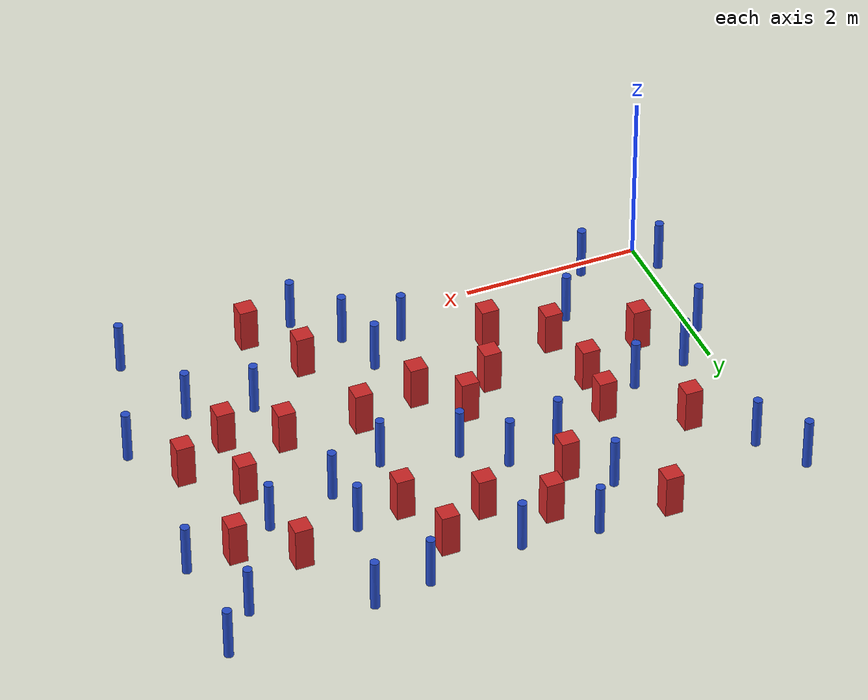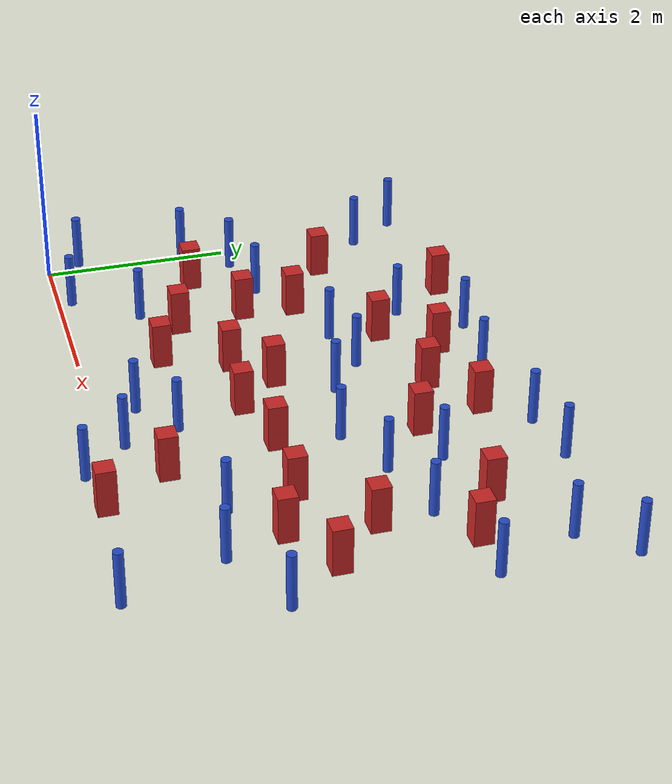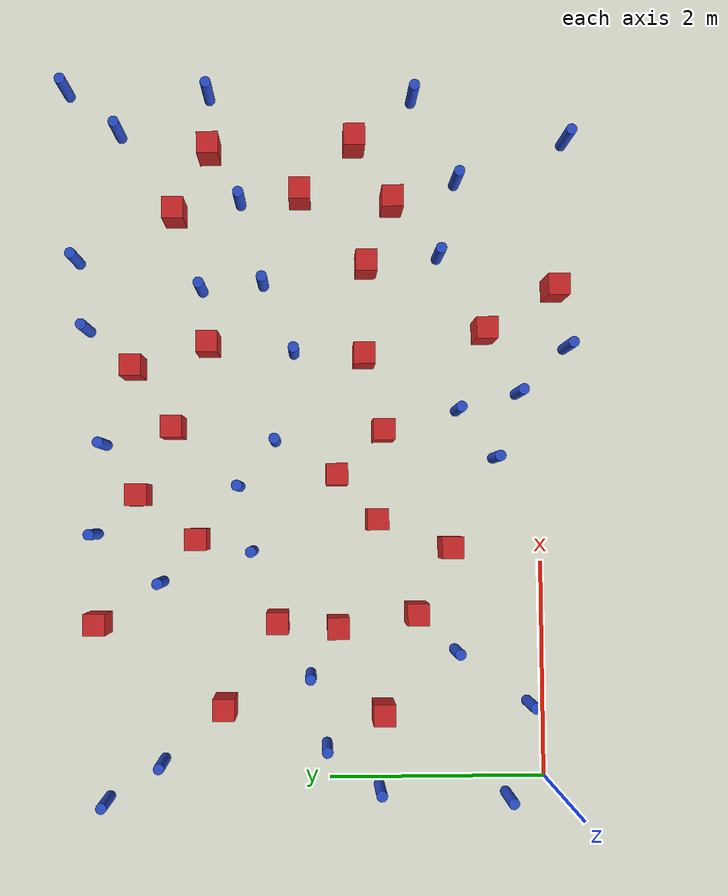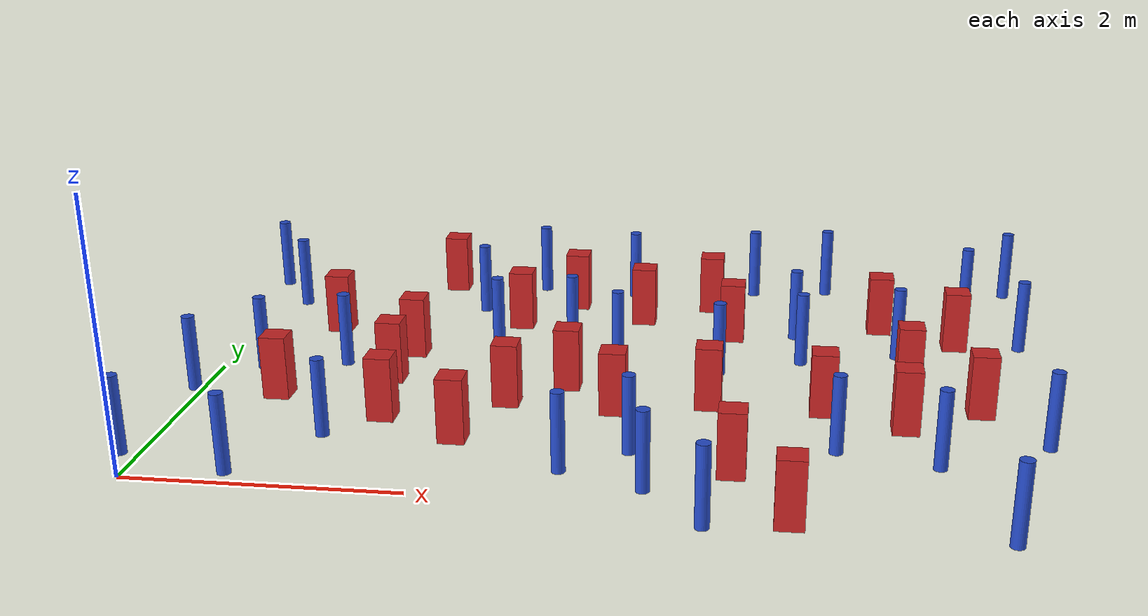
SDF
<sdf version="1.6">
 <model name="dense_55">
  <model name="pole_obstacle1">
   <static>true</static>
   <pose>5.58992759345 0.771042951277 -3.09024884793e-07 -7.19054271912e-07 -2.11315075134e-07 -1.93935509265e-07</pose>
   <link name="link">
    <pose>0 0 0.3 0 -0 0</pose>
    <inertial>
     <mass>1</mass>
     <inertia><ixx>0.145833</ixx><ixy>0</ixy><ixz>0</ixz><iyy>0.145833</iyy><iyz>0</iyz><izz>0.125</izz></inertia>
    </inertial>
    <collision name="collision">
     <geometry><cylinder><radius>0.05</radius><length>.6</length></cylinder></geometry>
    </collision>
    <visual name="visual">
     <geometry><cylinder><radius>0.05</radius><length>.6</length></cylinder></geometry>
     <material>
      <script><name>Gazebo/Blue</name><uri>file://media/materials/scripts/gazebo.material</uri></script>
     </material>
    </visual>
   </link>
  </model>
  <model name="pole_obstacle3">
   <static>true</static>
   <pose>3.14973722396 2.48802405268 -3.09024884793e-07 -7.19054271912e-07 -2.11315075144e-07 -1.93935509271e-07</pose>
   <link name="link">
    <pose>0 0 0.3 0 -0 0</pose>
    <inertial>
     <mass>1</mass>
     <inertia><ixx>0.145833</ixx><ixy>0</ixy><ixz>0</ixz><iyy>0.145833</iyy><iyz>0</iyz><izz>0.125</izz></inertia>
    </inertial>
    <collision name="collision">
     <geometry><cylinder><radius>0.05</radius><length>.6</length></cylinder></geometry>
    </collision>
    <visual name="visual">
     <geometry><cylinder><radius>0.05</radius><length>.6</length></cylinder></geometry>
     <material>
      <script><name>Gazebo/Blue</name><uri>file://media/materials/scripts/gazebo.material</uri></script>
     </material>
    </visual>
   </link>
  </model>
  <model name="square_post_obstacle13">
   <static>true</static>
   <pose>3.27607757877 3.43404862615 -4.36207812815e-07 3.75137919937e-06 9.77721102514e-07 2.47381364184e-05</pose>
   <link name="link">
    <pose>0 0 0.25 0 -0 0</pose>
    <inertial>
     <mass>100</mass>
     <inertia>
      <ixx>0.166667</ixx>
      <ixy>0</ixy>
      <ixz>0</ixz>
      <iyy>0.166667</iyy>
      <iyz>0</iyz>
      <izz>0.166667</izz>
     </inertia>
    </inertial>
    <collision name="collision"><geometry><box><size>.2 .2 .5</size></box></geometry></collision>
    <visual name="visual">
     <geometry><box><size>.2 .2 .5</size></box></geometry>
     <material>
      <script><name>Gazebo/Red</name><uri>file://media/materials/scripts/gazebo.material</uri></script>
     </material>
    </visual>
   </link>
  </model>
  <model name="pole_obstacle15">
   <static>true</static>
   <pose>6.39323773252 1.17414004297 -3.09024884793e-07 -7.19054271912e-07 -2.11315075124e-07 -1.93935509261e-07</pose>
   <link name="link">
    <pose>0 0 0.3 0 -0 0</pose>
    <inertial>
     <mass>1</mass>
     <inertia><ixx>0.145833</ixx><ixy>0</ixy><ixz>0</ixz><iyy>0.145833</iyy><iyz>0</iyz><izz>0.125</izz></inertia>
    </inertial>
    <collision name="collision">
     <geometry><cylinder><radius>0.05</radius><length>.6</length></cylinder></geometry>
    </collision>
    <visual name="visual">
     <geometry><cylinder><radius>0.05</radius><length>.6</length></cylinder></geometry>
     <material>
      <script><name>Gazebo/Blue</name><uri>file://media/materials/scripts/gazebo.material</uri></script>
     </material>
    </visual>
   </link>
  </model>
  <model name="square_post_obstacle24">
   <static>true</static>
   <pose>2.82406468082 1.91857976176 -4.36207812815e-07 3.75137919937e-06 9.77721102514e-07 2.47381364184e-05</pose>
   <link name="link">
    <pose>0 0 0.25 0 -0 0</pose>
    <inertial>
     <mass>100</mass>
     <inertia>
      <ixx>0.166667</ixx>
      <ixy>0</ixy>
      <ixz>0</ixz>
      <iyy>0.166667</iyy>
      <iyz>0</iyz>
      <izz>0.166667</izz>
     </inertia>
    </inertial>
    <collision name="collision"><geometry><box><size>.2 .2 .5</size></box></geometry></collision>
    <visual name="visual">
     <geometry><box><size>.2 .2 .5</size></box></geometry>
     <material>
      <script><name>Gazebo/Red</name><uri>file://media/materials/scripts/gazebo.material</uri></script>
     </material>
    </visual>
   </link>
  </model>
  <model name="pole_obstacle18">
   <static>true</static>
   <pose>2.12176368627 2.70748521758 -3.09024884793e-07 -7.19054271912e-07 -2.11315075144e-07 -1.93935509271e-07</pose>
   <link name="link">
    <pose>0 0 0.3 0 -0 0</pose>
    <inertial>
     <mass>1</mass>
     <inertia><ixx>0.145833</ixx><ixy>0</ixy><ixz>0</ixz><iyy>0.145833</iyy><iyz>0</iyz><izz>0.125</izz></inertia>
    </inertial>
    <collision name="collision">
     <geometry><cylinder><radius>0.05</radius><length>.6</length></cylinder></geometry>
    </collision>
    <visual name="visual">
     <geometry><cylinder><radius>0.05</radius><length>.6</length></cylinder></geometry>
     <material>
      <script><name>Gazebo/Blue</name><uri>file://media/materials/scripts/gazebo.material</uri></script>
     </material>
    </visual>
   </link>
  </model>
  <model name="square_post_obstacle31">
   <static>true</static>
   <pose>4.79556955324 1.62854520627 -4.36207812815e-07 3.75137919937e-06 9.77721102514e-07 2.47381364184e-05</pose>
   <link name="link">
    <pose>0 0 0.25 0 -0 0</pose>
    <inertial>
     <mass>100</mass>
     <inertia>
      <ixx>0.166667</ixx>
      <ixy>0</ixy>
      <ixz>0</ixz>
      <iyy>0.166667</iyy>
      <iyz>0</iyz>
      <izz>0.166667</izz>
     </inertia>
    </inertial>
    <collision name="collision"><geometry><box><size>.2 .2 .5</size></box></geometry></collision>
    <visual name="visual">
     <geometry><box><size>.2 .2 .5</size></box></geometry>
     <material>
      <script><name>Gazebo/Red</name><uri>file://media/materials/scripts/gazebo.material</uri></script>
     </material>
    </visual>
   </link>
  </model>
  <model name="pole_obstacle36">
   <static>true</static>
   <pose>4.86189972478 4.3403535434 -3.09024884793e-07 -7.19054271911e-07 -2.1131507516e-07 -1.93935509277e-07</pose>
   <link name="link">
    <pose>0 0 0.3 0 -0 0</pose>
    <inertial>
     <mass>1</mass>
     <inertia><ixx>0.145833</ixx><ixy>0</ixy><ixz>0</ixz><iyy>0.145833</iyy><iyz>0</iyz><izz>0.125</izz></inertia>
    </inertial>
    <collision name="collision">
     <geometry><cylinder><radius>0.05</radius><length>.6</length></cylinder></geometry>
    </collision>
    <visual name="visual">
     <geometry><cylinder><radius>0.05</radius><length>.6</length></cylinder></geometry>
     <material>
      <script><name>Gazebo/Blue</name><uri>file://media/materials/scripts/gazebo.material</uri></script>
     </material>
    </visual>
   </link>
  </model>
  <model name="square_post_obstacle36">
   <static>true</static>
   <pose>4.15909963592 0.525989410992 -4.36207812815e-07 3.75137919937e-06 9.77721102514e-07 2.47381364184e-05</pose>
   <link name="link">
    <pose>0 0 0.25 0 -0 0</pose>
    <inertial>
     <mass>100</mass>
     <inertia>
      <ixx>0.166667</ixx>
      <ixy>0</ixy>
      <ixz>0</ixz>
      <iyy>0.166667</iyy>
      <iyz>0</iyz>
      <izz>0.166667</izz>
     </inertia>
    </inertial>
    <collision name="collision"><geometry><box><size>.2 .2 .5</size></box></geometry></collision>
    <visual name="visual">
     <geometry><box><size>.2 .2 .5</size></box></geometry>
     <material>
      <script><name>Gazebo/Red</name><uri>file://media/materials/scripts/gazebo.material</uri></script>
     </material>
    </visual>
   </link>
  </model>
  <model name="pole_obstacle38">
   <static>true</static>
   <pose>4.20906245238 4.24223437994 -3.09024884793e-07 -7.19054271911e-07 -2.1131507516e-07 -1.93935509277e-07</pose>
   <link name="link">
    <pose>0 0 0.3 0 -0 0</pose>
    <inertial>
     <mass>1</mass>
     <inertia><ixx>0.145833</ixx><ixy>0</ixy><ixz>0</ixz><iyy>0.145833</iyy><iyz>0</iyz><izz>0.125</izz></inertia>
    </inertial>
    <collision name="collision">
     <geometry><cylinder><radius>0.05</radius><length>.6</length></cylinder></geometry>
    </collision>
    <visual name="visual">
     <geometry><cylinder><radius>0.05</radius><length>.6</length></cylinder></geometry>
     <material>
      <script><name>Gazebo/Blue</name><uri>file://media/materials/scripts/gazebo.material</uri></script>
     </material>
    </visual>
   </link>
  </model>
  <model name="square_post_obstacle41">
   <static>true</static>
   <pose>3.23152151646 1.48305024463 -4.36207812815e-07 3.75137919937e-06 9.77721102514e-07 2.47381364184e-05</pose>
   <link name="link">
    <pose>0 0 0.25 0 -0 0</pose>
    <inertial>
     <mass>100</mass>
     <inertia>
      <ixx>0.166667</ixx>
      <ixy>0</ixy>
      <ixz>0</ixz>
      <iyy>0.166667</iyy>
      <iyz>0</iyz>
      <izz>0.166667</izz>
     </inertia>
    </inertial>
    <collision name="collision"><geometry><box><size>.2 .2 .5</size></box></geometry></collision>
    <visual name="visual">
     <geometry><box><size>.2 .2 .5</size></box></geometry>
     <material>
      <script><name>Gazebo/Red</name><uri>file://media/materials/scripts/gazebo.material</uri></script>
     </material>
    </visual>
   </link>
  </model>
  <model name="square_post_obstacle44">
   <static>true</static>
   <pose>4.556816064 -0.141495539214 -4.36207812815e-07 3.75137919937e-06 9.77721102514e-07 2.47381364184e-05</pose>
   <link name="link">
    <pose>0 0 0.25 0 -0 0</pose>
    <inertial>
     <mass>100</mass>
     <inertia>
      <ixx>0.166667</ixx>
      <ixy>0</ixy>
      <ixz>0</ixz>
      <iyy>0.166667</iyy>
      <iyz>0</iyz>
      <izz>0.166667</izz>
     </inertia>
    </inertial>
    <collision name="collision"><geometry><box><size>.2 .2 .5</size></box></geometry></collision>
    <visual name="visual">
     <geometry><box><size>.2 .2 .5</size></box></geometry>
     <material>
      <script><name>Gazebo/Red</name><uri>file://media/materials/scripts/gazebo.material</uri></script>
     </material>
    </visual>
   </link>
  </model>
  <model name="pole_obstacle48">
   <static>true</static>
   <pose>2.72687363572 2.83181015 -3.09024884793e-07 -7.19054271912e-07 -2.11315075144e-07 -1.93935509271e-07</pose>
   <link name="link">
    <pose>0 0 0.3 0 -0 0</pose>
    <inertial>
     <mass>1</mass>
     <inertia><ixx>0.145833</ixx><ixy>0</ixy><ixz>0</ixz><iyy>0.145833</iyy><iyz>0</iyz><izz>0.125</izz></inertia>
    </inertial>
    <collision name="collision">
     <geometry><cylinder><radius>0.05</radius><length>.6</length></cylinder></geometry>
    </collision>
    <visual name="visual">
     <geometry><cylinder><radius>0.05</radius><length>.6</length></cylinder></geometry>
     <material>
      <script><name>Gazebo/Blue</name><uri>file://media/materials/scripts/gazebo.material</uri></script>
     </material>
    </visual>
   </link>
  </model>
  <model name="pole_obstacle53">
   <static>true</static>
   <pose>3.98057424473 2.30687734638 -3.09024884793e-07 -7.19054271912e-07 -2.11315075162e-07 -1.93935509281e-07</pose>
   <link name="link">
    <pose>0 0 0.3 0 -0 0</pose>
    <inertial>
     <mass>1</mass>
     <inertia><ixx>0.145833</ixx><ixy>0</ixy><ixz>0</ixz><iyy>0.145833</iyy><iyz>0</iyz><izz>0.125</izz></inertia>
    </inertial>
    <collision name="collision">
     <geometry><cylinder><radius>0.05</radius><length>.6</length></cylinder></geometry>
    </collision>
    <visual name="visual">
     <geometry><cylinder><radius>0.05</radius><length>.6</length></cylinder></geometry>
     <material>
      <script><name>Gazebo/Blue</name><uri>file://media/materials/scripts/gazebo.material</uri></script>
     </material>
    </visual>
   </link>
  </model>
  <model name="square_post_obstacle61">
   <static>true</static>
   <pose>3.84370409949 3.80862990596 -4.36207812815e-07 3.75137919937e-06 9.77721102514e-07 2.47381364184e-05</pose>
   <link name="link">
    <pose>0 0 0.25 0 -0 0</pose>
    <inertial>
     <mass>100</mass>
     <inertia>
      <ixx>0.166667</ixx>
      <ixy>0</ixy>
      <ixz>0</ixz>
      <iyy>0.166667</iyy>
      <iyz>0</iyz>
      <izz>0.166667</izz>
     </inertia>
    </inertial>
    <collision name="collision"><geometry><box><size>.2 .2 .5</size></box></geometry></collision>
    <visual name="visual">
     <geometry><box><size>.2 .2 .5</size></box></geometry>
     <material>
      <script><name>Gazebo/Red</name><uri>file://media/materials/scripts/gazebo.material</uri></script>
     </material>
    </visual>
   </link>
  </model>
  <model name="pole_obstacle58">
   <static>true</static>
   <pose>4.87939695554 0.945920177138 -3.09024884793e-07 -7.19054271912e-07 -2.11315075134e-07 -1.93935509265e-07</pose>
   <link name="link">
    <pose>0 0 0.3 0 -0 0</pose>
    <inertial>
     <mass>1</mass>
     <inertia><ixx>0.145833</ixx><ixy>0</ixy><ixz>0</ixz><iyy>0.145833</iyy><iyz>0</iyz><izz>0.125</izz></inertia>
    </inertial>
    <collision name="collision">
     <geometry><cylinder><radius>0.05</radius><length>.6</length></cylinder></geometry>
    </collision>
    <visual name="visual">
     <geometry><cylinder><radius>0.05</radius><length>.6</length></cylinder></geometry>
     <material>
      <script><name>Gazebo/Blue</name><uri>file://media/materials/scripts/gazebo.material</uri></script>
     </material>
    </visual>
   </link>
  </model>
  <model name="pole_obstacle66">
   <static>true</static>
   <pose>4.58161983679 3.17085954249 -3.09024884793e-07 -7.19054271912e-07 -2.11315075144e-07 -1.93935509269e-07</pose>
   <link name="link">
    <pose>0 0 0.3 0 -0 0</pose>
    <inertial>
     <mass>1</mass>
     <inertia><ixx>0.145833</ixx><ixy>0</ixy><ixz>0</ixz><iyy>0.145833</iyy><iyz>0</iyz><izz>0.125</izz></inertia>
    </inertial>
    <collision name="collision">
     <geometry><cylinder><radius>0.05</radius><length>.6</length></cylinder></geometry>
    </collision>
    <visual name="visual">
     <geometry><cylinder><radius>0.05</radius><length>.6</length></cylinder></geometry>
     <material>
      <script><name>Gazebo/Blue</name><uri>file://media/materials/scripts/gazebo.material</uri></script>
     </material>
    </visual>
   </link>
  </model>
  <model name="square_post_obstacle74">
   <static>true</static>
   <pose>5.39063758483 1.37951681456 -4.36207812815e-07 3.75137919937e-06 9.77721102514e-07 2.47381364184e-05</pose>
   <link name="link">
    <pose>0 0 0.25 0 -0 0</pose>
    <inertial>
     <mass>100</mass>
     <inertia>
      <ixx>0.166667</ixx>
      <ixy>0</ixy>
      <ixz>0</ixz>
      <iyy>0.166667</iyy>
      <iyz>0</iyz>
      <izz>0.166667</izz>
     </inertia>
    </inertial>
    <collision name="collision"><geometry><box><size>.2 .2 .5</size></box></geometry></collision>
    <visual name="visual">
     <geometry><box><size>.2 .2 .5</size></box></geometry>
     <material>
      <script><name>Gazebo/Red</name><uri>file://media/materials/scripts/gazebo.material</uri></script>
     </material>
    </visual>
   </link>
  </model>
  <model name="pole_obstacle72">
   <static>true</static>
   <pose>5.96688714051 -0.261945953001 -3.09024884793e-07 -7.19054271912e-07 -2.1131507512e-07 -1.93935509259e-07</pose>
   <link name="link">
    <pose>0 0 0.3 0 -0 0</pose>
    <inertial>
     <mass>1</mass>
     <inertia><ixx>0.145833</ixx><ixy>0</ixy><ixz>0</ixz><iyy>0.145833</iyy><iyz>0</iyz><izz>0.125</izz></inertia>
    </inertial>
    <collision name="collision">
     <geometry><cylinder><radius>0.05</radius><length>.6</length></cylinder></geometry>
    </collision>
    <visual name="visual">
     <geometry><cylinder><radius>0.05</radius><length>.6</length></cylinder></geometry>
     <material>
      <script><name>Gazebo/Blue</name><uri>file://media/materials/scripts/gazebo.material</uri></script>
     </material>
    </visual>
   </link>
  </model>
  <model name="pole_obstacle73">
   <static>true</static>
   <pose>0.191014216348 3.54210844667 -3.09024884793e-07 -7.19054271912e-07 -2.11315075126e-07 -1.9393550926e-07</pose>
   <link name="link">
    <pose>0 0 0.3 0 -0 0</pose>
    <inertial>
     <mass>1</mass>
     <inertia><ixx>0.145833</ixx><ixy>0</ixy><ixz>0</ixz><iyy>0.145833</iyy><iyz>0</iyz><izz>0.125</izz></inertia>
    </inertial>
    <collision name="collision">
     <geometry><cylinder><radius>0.05</radius><length>.6</length></cylinder></geometry>
    </collision>
    <visual name="visual">
     <geometry><cylinder><radius>0.05</radius><length>.6</length></cylinder></geometry>
     <material>
      <script><name>Gazebo/Blue</name><uri>file://media/materials/scripts/gazebo.material</uri></script>
     </material>
    </visual>
   </link>
  </model>
  <model name="pole_obstacle77">
   <static>true</static>
   <pose>3.1286048756 4.08764542754 -3.09024884793e-07 -7.19054271912e-07 -2.11315075134e-07 -1.93935509266e-07</pose>
   <link name="link">
    <pose>0 0 0.3 0 -0 0</pose>
    <inertial>
     <mass>1</mass>
     <inertia><ixx>0.145833</ixx><ixy>0</ixy><ixz>0</ixz><iyy>0.145833</iyy><iyz>0</iyz><izz>0.125</izz></inertia>
    </inertial>
    <collision name="collision">
     <geometry><cylinder><radius>0.05</radius><length>.6</length></cylinder></geometry>
    </collision>
    <visual name="visual">
     <geometry><cylinder><radius>0.05</radius><length>.6</length></cylinder></geometry>
     <material>
      <script><name>Gazebo/Blue</name><uri>file://media/materials/scripts/gazebo.material</uri></script>
     </material>
    </visual>
   </link>
  </model>
  <model name="pole_obstacle83">
   <static>true</static>
   <pose>2.97524697122 0.436235501016 -3.09024884793e-07 -7.19054271912e-07 -2.1131507512e-07 -1.93935509259e-07</pose>
   <link name="link">
    <pose>0 0 0.3 0 -0 0</pose>
    <inertial>
     <mass>1</mass>
     <inertia><ixx>0.145833</ixx><ixy>0</ixy><ixz>0</ixz><iyy>0.145833</iyy><iyz>0</iyz><izz>0.125</izz></inertia>
    </inertial>
    <collision name="collision">
     <geometry><cylinder><radius>0.05</radius><length>.6</length></cylinder></geometry>
    </collision>
    <visual name="visual">
     <geometry><cylinder><radius>0.05</radius><length>.6</length></cylinder></geometry>
     <material>
      <script><name>Gazebo/Blue</name><uri>file://media/materials/scripts/gazebo.material</uri></script>
     </material>
    </visual>
   </link>
  </model>
  <model name="square_post_obstacle80">
   <static>true</static>
   <pose>1.53550475254 1.1888443946 -4.36207812815e-07 3.75137919937e-06 9.77721102514e-07 2.47381364184e-05</pose>
   <link name="link">
    <pose>0 0 0.25 0 -0 0</pose>
    <inertial>
     <mass>100</mass>
     <inertia>
      <ixx>0.166667</ixx>
      <ixy>0</ixy>
      <ixz>0</ixz>
      <iyy>0.166667</iyy>
      <iyz>0</iyz>
      <izz>0.166667</izz>
     </inertia>
    </inertial>
    <collision name="collision"><geometry><box><size>.2 .2 .5</size></box></geometry></collision>
    <visual name="visual">
     <geometry><box><size>.2 .2 .5</size></box></geometry>
     <material>
      <script><name>Gazebo/Red</name><uri>file://media/materials/scripts/gazebo.material</uri></script>
     </material>
    </visual>
   </link>
  </model>
  <model name="square_post_obstacle82">
   <static>true</static>
   <pose>5.46969585893 2.24189731197 -4.36207812815e-07 3.75137919937e-06 9.77721102514e-07 2.47381364184e-05</pose>
   <link name="link">
    <pose>0 0 0.25 0 -0 0</pose>
    <inertial>
     <mass>100</mass>
     <inertia>
      <ixx>0.166667</ixx>
      <ixy>0</ixy>
      <ixz>0</ixz>
      <iyy>0.166667</iyy>
      <iyz>0</iyz>
      <izz>0.166667</izz>
     </inertia>
    </inertial>
    <collision name="collision"><geometry><box><size>.2 .2 .5</size></box></geometry></collision>
    <visual name="visual">
     <geometry><box><size>.2 .2 .5</size></box></geometry>
     <material>
      <script><name>Gazebo/Red</name><uri>file://media/materials/scripts/gazebo.material</uri></script>
     </material>
    </visual>
   </link>
  </model>
  <model name="square_post_obstacle86">
   <static>true</static>
   <pose>0.694363843619 2.96439745133 -4.36207812815e-07 3.75137919937e-06 9.77721102514e-07 2.47381364184e-05</pose>
   <link name="link">
    <pose>0 0 0.25 0 -0 0</pose>
    <inertial>
     <mass>100</mass>
     <inertia>
      <ixx>0.166667</ixx>
      <ixy>0</ixy>
      <ixz>0</ixz>
      <iyy>0.166667</iyy>
      <iyz>0</iyz>
      <izz>0.166667</izz>
     </inertia>
    </inertial>
    <collision name="collision"><geometry><box><size>.2 .2 .5</size></box></geometry></collision>
    <visual name="visual">
     <geometry><box><size>.2 .2 .5</size></box></geometry>
     <material>
      <script><name>Gazebo/Red</name><uri>file://media/materials/scripts/gazebo.material</uri></script>
     </material>
    </visual>
   </link>
  </model>
  <model name="square_post_obstacle88">
   <static>true</static>
   <pose>3.9352729879 1.65612882925 -4.36207812815e-07 3.75137919937e-06 9.77721102514e-07 2.47381364184e-05</pose>
   <link name="link">
    <pose>0 0 0.25 0 -0 0</pose>
    <inertial>
     <mass>100</mass>
     <inertia>
      <ixx>0.166667</ixx>
      <ixy>0</ixy>
      <ixz>0</ixz>
      <iyy>0.166667</iyy>
      <iyz>0</iyz>
      <izz>0.166667</izz>
     </inertia>
    </inertial>
    <collision name="collision"><geometry><box><size>.2 .2 .5</size></box></geometry></collision>
    <visual name="visual">
     <geometry><box><size>.2 .2 .5</size></box></geometry>
     <material>
      <script><name>Gazebo/Red</name><uri>file://media/materials/scripts/gazebo.material</uri></script>
     </material>
    </visual>
   </link>
  </model>
  <model name="square_post_obstacle95">
   <static>true</static>
   <pose>5.3009375738 3.41798213768 -4.36207812815e-07 3.75137919937e-06 9.77721102514e-07 2.47381364184e-05</pose>
   <link name="link">
    <pose>0 0 0.25 0 -0 0</pose>
    <inertial>
     <mass>100</mass>
     <inertia>
      <ixx>0.166667</ixx>
      <ixy>0</ixy>
      <ixz>0</ixz>
      <iyy>0.166667</iyy>
      <iyz>0</iyz>
      <izz>0.166667</izz>
     </inertia>
    </inertial>
    <collision name="collision"><geometry><box><size>.2 .2 .5</size></box></geometry></collision>
    <visual name="visual">
     <geometry><box><size>.2 .2 .5</size></box></geometry>
     <material>
      <script><name>Gazebo/Red</name><uri>file://media/materials/scripts/gazebo.material</uri></script>
     </material>
    </visual>
   </link>
  </model>
  <model name="pole_obstacle108">
   <static>true</static>
   <pose>6.4364949122 3.09810819985 -3.09024884793e-07 -7.19054271912e-07 -2.11315075144e-07 -1.93935509269e-07</pose>
   <link name="link">
    <pose>0 0 0.3 0 -0 0</pose>
    <inertial>
     <mass>1</mass>
     <inertia><ixx>0.145833</ixx><ixy>0</ixy><ixz>0</ixz><iyy>0.145833</iyy><iyz>0</iyz><izz>0.125</izz></inertia>
    </inertial>
    <collision name="collision">
     <geometry><cylinder><radius>0.05</radius><length>.6</length></cylinder></geometry>
    </collision>
    <visual name="visual">
     <geometry><cylinder><radius>0.05</radius><length>.6</length></cylinder></geometry>
     <material>
      <script><name>Gazebo/Blue</name><uri>file://media/materials/scripts/gazebo.material</uri></script>
     </material>
    </visual>
   </link>
  </model>
  <model name="square_post_obstacle96">
   <static>true</static>
   <pose>5.9679975727 1.73093672961 -4.36207812815e-07 3.75137919937e-06 9.77721102514e-07 2.47381364184e-05</pose>
   <link name="link">
    <pose>0 0 0.25 0 -0 0</pose>
    <inertial>
     <mass>100</mass>
     <inertia>
      <ixx>0.166667</ixx>
      <ixy>0</ixy>
      <ixz>0</ixz>
      <iyy>0.166667</iyy>
      <iyz>0</iyz>
      <izz>0.166667</izz>
     </inertia>
    </inertial>
    <collision name="collision"><geometry><box><size>.2 .2 .5</size></box></geometry></collision>
    <visual name="visual">
     <geometry><box><size>.2 .2 .5</size></box></geometry>
     <material>
      <script><name>Gazebo/Red</name><uri>file://media/materials/scripts/gazebo.material</uri></script>
     </material>
    </visual>
   </link>
  </model>
  <model name="square_post_obstacle105">
   <static>true</static>
   <pose>1.4188090399 1.91860991745 -4.36207812815e-07 3.75137919937e-06 9.77721102514e-07 2.47381364184e-05</pose>
   <link name="link">
    <pose>0 0 0.25 0 -0 0</pose>
    <inertial>
     <mass>100</mass>
     <inertia>
      <ixx>0.166667</ixx>
      <ixy>0</ixy>
      <ixz>0</ixz>
      <iyy>0.166667</iyy>
      <iyz>0</iyz>
      <izz>0.166667</izz>
     </inertia>
    </inertial>
    <collision name="collision"><geometry><box><size>.2 .2 .5</size></box></geometry></collision>
    <visual name="visual">
     <geometry><box><size>.2 .2 .5</size></box></geometry>
     <material>
      <script><name>Gazebo/Red</name><uri>file://media/materials/scripts/gazebo.material</uri></script>
     </material>
    </visual>
   </link>
  </model>
  <model name="square_post_obstacle111">
   <static>true</static>
   <pose>2.65095305907 3.75799540719 -4.36207812815e-07 3.75137919937e-06 9.77721102514e-07 2.47381364184e-05</pose>
   <link name="link">
    <pose>0 0 0.25 0 -0 0</pose>
    <inertial>
     <mass>100</mass>
     <inertia>
      <ixx>0.166667</ixx>
      <ixy>0</ixy>
      <ixz>0</ixz>
      <iyy>0.166667</iyy>
      <iyz>0</iyz>
      <izz>0.166667</izz>
     </inertia>
    </inertial>
    <collision name="collision"><geometry><box><size>.2 .2 .5</size></box></geometry></collision>
    <visual name="visual">
     <geometry><box><size>.2 .2 .5</size></box></geometry>
     <material>
      <script><name>Gazebo/Red</name><uri>file://media/materials/scripts/gazebo.material</uri></script>
     </material>
    </visual>
   </link>
  </model>
  <model name="pole_obstacle129">
   <static>true</static>
   <pose>-0.144192167171 0.364190130633 -3.09024884793e-07 -7.19054271912e-07 -2.1131507514e-07 -1.93935509267e-07</pose>
   <link name="link">
    <pose>0 0 0.3 0 -0 0</pose>
    <inertial>
     <mass>1</mass>
     <inertia><ixx>0.145833</ixx><ixy>0</ixy><ixz>0</ixz><iyy>0.145833</iyy><iyz>0</iyz><izz>0.125</izz></inertia>
    </inertial>
    <collision name="collision">
     <geometry><cylinder><radius>0.05</radius><length>.6</length></cylinder></geometry>
    </collision>
    <visual name="visual">
     <geometry><cylinder><radius>0.05</radius><length>.6</length></cylinder></geometry>
     <material>
      <script><name>Gazebo/Blue</name><uri>file://media/materials/scripts/gazebo.material</uri></script>
     </material>
    </visual>
   </link>
  </model>
  <model name="pole_obstacle133">
   <static>true</static>
   <pose>1.18369906705 0.822669275125 -3.09024884793e-07 -7.19054271912e-07 -2.1131507513e-07 -1.93935509263e-07</pose>
   <link name="link">
    <pose>0 0 0.3 0 -0 0</pose>
    <inertial>
     <mass>1</mass>
     <inertia><ixx>0.145833</ixx><ixy>0</ixy><ixz>0</ixz><iyy>0.145833</iyy><iyz>0</iyz><izz>0.125</izz></inertia>
    </inertial>
    <collision name="collision">
     <geometry><cylinder><radius>0.05</radius><length>.6</length></cylinder></geometry>
    </collision>
    <visual name="visual">
     <geometry><cylinder><radius>0.05</radius><length>.6</length></cylinder></geometry>
     <material>
      <script><name>Gazebo/Blue</name><uri>file://media/materials/scripts/gazebo.material</uri></script>
     </material>
    </visual>
   </link>
  </model>
  <model name="square_post_obstacle121">
   <static>true</static>
   <pose>2.40837133202 1.54949164652 -4.36207812815e-07 3.75137919937e-06 9.77721102514e-07 2.47381364184e-05</pose>
   <link name="link">
    <pose>0 0 0.25 0 -0 0</pose>
    <inertial>
     <mass>100</mass>
     <inertia>
      <ixx>0.166667</ixx>
      <ixy>0</ixy>
      <ixz>0</ixz>
      <iyy>0.166667</iyy>
      <iyz>0</iyz>
      <izz>0.166667</izz>
     </inertia>
    </inertial>
    <collision name="collision"><geometry><box><size>.2 .2 .5</size></box></geometry></collision>
    <visual name="visual">
     <geometry><box><size>.2 .2 .5</size></box></geometry>
     <material>
      <script><name>Gazebo/Red</name><uri>file://media/materials/scripts/gazebo.material</uri></script>
     </material>
    </visual>
   </link>
  </model>
  <model name="square_post_obstacle127">
   <static>true</static>
   <pose>5.90309375543 3.09312610509 -4.36207812815e-07 3.75137919937e-06 9.77721102514e-07 2.47381364184e-05</pose>
   <link name="link">
    <pose>0 0 0.25 0 -0 0</pose>
    <inertial>
     <mass>100</mass>
     <inertia>
      <ixx>0.166667</ixx>
      <ixy>0</ixy>
      <ixz>0</ixz>
      <iyy>0.166667</iyy>
      <iyz>0</iyz>
      <izz>0.166667</izz>
     </inertia>
    </inertial>
    <collision name="collision"><geometry><box><size>.2 .2 .5</size></box></geometry></collision>
    <visual name="visual">
     <geometry><box><size>.2 .2 .5</size></box></geometry>
     <material>
      <script><name>Gazebo/Red</name><uri>file://media/materials/scripts/gazebo.material</uri></script>
     </material>
    </visual>
   </link>
  </model>
  <model name="square_post_obstacle133">
   <static>true</static>
   <pose>1.47053824098 2.4731148796 -4.36207812815e-07 3.75137919937e-06 9.77721102514e-07 2.47381364184e-05</pose>
   <link name="link">
    <pose>0 0 0.25 0 -0 0</pose>
    <inertial>
     <mass>100</mass>
     <inertia>
      <ixx>0.166667</ixx>
      <ixy>0</ixy>
      <ixz>0</ixz>
      <iyy>0.166667</iyy>
      <iyz>0</iyz>
      <izz>0.166667</izz>
     </inertia>
    </inertial>
    <collision name="collision"><geometry><box><size>.2 .2 .5</size></box></geometry></collision>
    <visual name="visual">
     <geometry><box><size>.2 .2 .5</size></box></geometry>
     <material>
      <script><name>Gazebo/Red</name><uri>file://media/materials/scripts/gazebo.material</uri></script>
     </material>
    </visual>
   </link>
  </model>
  <model name="pole_obstacle146">
   <static>true</static>
   <pose>0.322951679469 2.02812886766 -3.09024884793e-07 -7.19054271912e-07 -2.11315075132e-07 -1.93935509264e-07</pose>
   <link name="link">
    <pose>0 0 0.3 0 -0 0</pose>
    <inertial>
     <mass>1</mass>
     <inertia><ixx>0.145833</ixx><ixy>0</ixy><ixz>0</ixz><iyy>0.145833</iyy><iyz>0</iyz><izz>0.125</izz></inertia>
    </inertial>
    <collision name="collision">
     <geometry><cylinder><radius>0.05</radius><length>.6</length></cylinder></geometry>
    </collision>
    <visual name="visual">
     <geometry><cylinder><radius>0.05</radius><length>.6</length></cylinder></geometry>
     <material>
      <script><name>Gazebo/Blue</name><uri>file://media/materials/scripts/gazebo.material</uri></script>
     </material>
    </visual>
   </link>
  </model>
  <model name="pole_obstacle148">
   <static>true</static>
   <pose>4.63346478088 2.59417303646 -3.09024884793e-07 -7.19054271912e-07 -2.11315075144e-07 -1.93935509269e-07</pose>
   <link name="link">
    <pose>0 0 0.3 0 -0 0</pose>
    <inertial>
     <mass>1</mass>
     <inertia><ixx>0.145833</ixx><ixy>0</ixy><ixz>0</ixz><iyy>0.145833</iyy><iyz>0</iyz><izz>0.125</izz></inertia>
    </inertial>
    <collision name="collision">
     <geometry><cylinder><radius>0.05</radius><length>.6</length></cylinder></geometry>
    </collision>
    <visual name="visual">
     <geometry><cylinder><radius>0.05</radius><length>.6</length></cylinder></geometry>
     <material>
      <script><name>Gazebo/Blue</name><uri>file://media/materials/scripts/gazebo.material</uri></script>
     </material>
    </visual>
   </link>
  </model>
  <model name="pole_obstacle152">
   <static>true</static>
   <pose>1.84183288407 3.55276306457 -3.09024884793e-07 -7.19054271912e-07 -2.11315075132e-07 -1.93935509263e-07</pose>
   <link name="link">
    <pose>0 0 0.3 0 -0 0</pose>
    <inertial>
     <mass>1</mass>
     <inertia><ixx>0.145833</ixx><ixy>0</ixy><ixz>0</ixz><iyy>0.145833</iyy><iyz>0</iyz><izz>0.125</izz></inertia>
    </inertial>
    <collision name="collision">
     <geometry><cylinder><radius>0.05</radius><length>.6</length></cylinder></geometry>
    </collision>
    <visual name="visual">
     <geometry><cylinder><radius>0.05</radius><length>.6</length></cylinder></geometry>
     <material>
      <script><name>Gazebo/Blue</name><uri>file://media/materials/scripts/gazebo.material</uri></script>
     </material>
    </visual>
   </link>
  </model>
  <model name="square_post_obstacle142">
   <static>true</static>
   <pose>2.14248811181 0.868346049233 -4.36207812815e-07 3.75137919937e-06 9.77721102514e-07 2.47381364184e-05</pose>
   <link name="link">
    <pose>0 0 0.25 0 -0 0</pose>
    <inertial>
     <mass>100</mass>
     <inertia>
      <ixx>0.166667</ixx>
      <ixy>0</ixy>
      <ixz>0</ixz>
      <iyy>0.166667</iyy>
      <iyz>0</iyz>
      <izz>0.166667</izz>
     </inertia>
    </inertial>
    <collision name="collision"><geometry><box><size>.2 .2 .5</size></box></geometry></collision>
    <visual name="visual">
     <geometry><box><size>.2 .2 .5</size></box></geometry>
     <material>
      <script><name>Gazebo/Red</name><uri>file://media/materials/scripts/gazebo.material</uri></script>
     </material>
    </visual>
   </link>
  </model>
  <model name="pole_obstacle157">
   <static>true</static>
   <pose>3.57901939438 0.213476796068 -3.09024884793e-07 -7.19054271912e-07 -2.11315075123e-07 -1.9393550926e-07</pose>
   <link name="link">
    <pose>0 0 0.3 0 -0 0</pose>
    <inertial>
     <mass>1</mass>
     <inertia><ixx>0.145833</ixx><ixy>0</ixy><ixz>0</ixz><iyy>0.145833</iyy><iyz>0</iyz><izz>0.125</izz></inertia>
    </inertial>
    <collision name="collision">
     <geometry><cylinder><radius>0.05</radius><length>.6</length></cylinder></geometry>
    </collision>
    <visual name="visual">
     <geometry><cylinder><radius>0.05</radius><length>.6</length></cylinder></geometry>
     <material>
      <script><name>Gazebo/Blue</name><uri>file://media/materials/scripts/gazebo.material</uri></script>
     </material>
    </visual>
   </link>
  </model>
  <model name="pole_obstacle161">
   <static>true</static>
   <pose>5.41454715701 2.80429465588 -3.09024884793e-07 -7.19054271912e-07 -2.11315075144e-07 -1.93935509269e-07</pose>
   <link name="link">
    <pose>0 0 0.3 0 -0 0</pose>
    <inertial>
     <mass>1</mass>
     <inertia><ixx>0.145833</ixx><ixy>0</ixy><ixz>0</ixz><iyy>0.145833</iyy><iyz>0</iyz><izz>0.125</izz></inertia>
    </inertial>
    <collision name="collision">
     <geometry><cylinder><radius>0.05</radius><length>.6</length></cylinder></geometry>
    </collision>
    <visual name="visual">
     <geometry><cylinder><radius>0.05</radius><length>.6</length></cylinder></geometry>
     <material>
      <script><name>Gazebo/Blue</name><uri>file://media/materials/scripts/gazebo.material</uri></script>
     </material>
    </visual>
   </link>
  </model>
  <model name="square_post_obstacle154">
   <static>true</static>
   <pose>0.631460025407 1.50656512687 -4.36207812815e-07 3.75137919937e-06 9.77721102514e-07 2.47381364184e-05</pose>
   <link name="link">
    <pose>0 0 0.25 0 -0 0</pose>
    <inertial>
     <mass>100</mass>
     <inertia>
      <ixx>0.166667</ixx>
      <ixy>0</ixy>
      <ixz>0</ixz>
      <iyy>0.166667</iyy>
      <iyz>0</iyz>
      <izz>0.166667</izz>
     </inertia>
    </inertial>
    <collision name="collision"><geometry><box><size>.2 .2 .5</size></box></geometry></collision>
    <visual name="visual">
     <geometry><box><size>.2 .2 .5</size></box></geometry>
     <material>
      <script><name>Gazebo/Red</name><uri>file://media/materials/scripts/gazebo.material</uri></script>
     </material>
    </visual>
   </link>
  </model>
  <model name="pole_obstacle167">
   <static>true</static>
   <pose>-0.154795861224 4.05834478072 -3.09024884793e-07 -7.19054271912e-07 -2.11315075133e-07 -1.93935509265e-07</pose>
   <link name="link">
    <pose>0 0 0.3 0 -0 0</pose>
    <inertial>
     <mass>1</mass>
     <inertia><ixx>0.145833</ixx><ixy>0</ixy><ixz>0</ixz><iyy>0.145833</iyy><iyz>0</iyz><izz>0.125</izz></inertia>
    </inertial>
    <collision name="collision">
     <geometry><cylinder><radius>0.05</radius><length>.6</length></cylinder></geometry>
    </collision>
    <visual name="visual">
     <geometry><cylinder><radius>0.05</radius><length>.6</length></cylinder></geometry>
     <material>
      <script><name>Gazebo/Blue</name><uri>file://media/materials/scripts/gazebo.material</uri></script>
     </material>
    </visual>
   </link>
  </model>
  <model name="square_post_obstacle168">
   <static>true</static>
   <pose>4.05459076122 3.10582809153 -4.36207812815e-07 3.75137919937e-06 9.77721102514e-07 2.47381364184e-05</pose>
   <link name="link">
    <pose>0 0 0.25 0 -0 0</pose>
    <inertial>
     <mass>100</mass>
     <inertia>
      <ixx>0.166667</ixx>
      <ixy>0</ixy>
      <ixz>0</ixz>
      <iyy>0.166667</iyy>
      <iyz>0</iyz>
      <izz>0.166667</izz>
     </inertia>
    </inertial>
    <collision name="collision"><geometry><box><size>.2 .2 .5</size></box></geometry></collision>
    <visual name="visual">
     <geometry><box><size>.2 .2 .5</size></box></geometry>
     <material>
      <script><name>Gazebo/Red</name><uri>file://media/materials/scripts/gazebo.material</uri></script>
     </material>
    </visual>
   </link>
  </model>
  <model name="pole_obstacle179">
   <static>true</static>
   <pose>2.29151788511 4.17189401148 -3.09024884793e-07 -7.19054271912e-07 -2.11315075134e-07 -1.93935509266e-07</pose>
   <link name="link">
    <pose>0 0 0.3 0 -0 0</pose>
    <inertial>
     <mass>1</mass>
     <inertia><ixx>0.145833</ixx><ixy>0</ixy><ixz>0</ixz><iyy>0.145833</iyy><iyz>0</iyz><izz>0.125</izz></inertia>
    </inertial>
    <collision name="collision">
     <geometry><cylinder><radius>0.05</radius><length>.6</length></cylinder></geometry>
    </collision>
    <visual name="visual">
     <geometry><cylinder><radius>0.05</radius><length>.6</length></cylinder></geometry>
     <material>
      <script><name>Gazebo/Blue</name><uri>file://media/materials/scripts/gazebo.material</uri></script>
     </material>
    </visual>
   </link>
  </model>
  <model name="pole_obstacle184">
   <static>true</static>
   <pose>4.00522633401 -0.247419083027 -3.09024884793e-07 -7.19054271912e-07 -2.11315075129e-07 -1.93935509263e-07</pose>
   <link name="link">
    <pose>0 0 0.3 0 -0 0</pose>
    <inertial>
     <mass>1</mass>
     <inertia><ixx>0.145833</ixx><ixy>0</ixy><ixz>0</ixz><iyy>0.145833</iyy><iyz>0</iyz><izz>0.125</izz></inertia>
    </inertial>
    <collision name="collision">
     <geometry><cylinder><radius>0.05</radius><length>.6</length></cylinder></geometry>
    </collision>
    <visual name="visual">
     <geometry><cylinder><radius>0.05</radius><length>.6</length></cylinder></geometry>
     <material>
      <script><name>Gazebo/Blue</name><uri>file://media/materials/scripts/gazebo.material</uri></script>
     </material>
    </visual>
   </link>
  </model>
  <model name="square_post_obstacle179">
   <static>true</static>
   <pose>1.46992413779 4.13880424231 -4.36207812815e-07 3.75137919937e-06 9.77721102514e-07 2.47381364184e-05</pose>
   <link name="link">
    <pose>0 0 0.25 0 -0 0</pose>
    <inertial>
     <mass>100</mass>
     <inertia>
      <ixx>0.166667</ixx>
      <ixy>0</ixy>
      <ixz>0</ixz>
      <iyy>0.166667</iyy>
      <iyz>0</iyz>
      <izz>0.166667</izz>
     </inertia>
    </inertial>
    <collision name="collision"><geometry><box><size>.2 .2 .5</size></box></geometry></collision>
    <visual name="visual">
     <geometry><box><size>.2 .2 .5</size></box></geometry>
     <material>
      <script><name>Gazebo/Red</name><uri>file://media/materials/scripts/gazebo.material</uri></script>
     </material>
    </visual>
   </link>
  </model>
  <model name="square_post_obstacle199">
   <static>true</static>
   <pose>2.23717168236 3.216010356 -4.36207812815e-07 3.75137919937e-06 9.77721102514e-07 2.47381364184e-05</pose>
   <link name="link">
    <pose>0 0 0.25 0 -0 0</pose>
    <inertial>
     <mass>100</mass>
     <inertia>
      <ixx>0.166667</ixx>
      <ixy>0</ixy>
      <ixz>0</ixz>
      <iyy>0.166667</iyy>
      <iyz>0</iyz>
      <izz>0.166667</izz>
     </inertia>
    </inertial>
    <collision name="collision"><geometry><box><size>.2 .2 .5</size></box></geometry></collision>
    <visual name="visual">
     <geometry><box><size>.2 .2 .5</size></box></geometry>
     <material>
      <script><name>Gazebo/Red</name><uri>file://media/materials/scripts/gazebo.material</uri></script>
     </material>
    </visual>
   </link>
  </model>
  <model name="pole_obstacle188">
   <static>true</static>
   <pose>3.42457672335 0.781788411174 -3.09024884793e-07 -7.19054271913e-07 -2.1131507512e-07 -1.93935509259e-07</pose>
   <link name="link">
    <pose>0 0 0.3 0 -0 0</pose>
    <inertial>
     <mass>1</mass>
     <inertia><ixx>0.145833</ixx><ixy>0</ixy><ixz>0</ixz><iyy>0.145833</iyy><iyz>0</iyz><izz>0.125</izz></inertia>
    </inertial>
    <collision name="collision">
     <geometry><cylinder><radius>0.05</radius><length>.6</length></cylinder></geometry>
    </collision>
    <visual name="visual">
     <geometry><cylinder><radius>0.05</radius><length>.6</length></cylinder></geometry>
     <material>
      <script><name>Gazebo/Blue</name><uri>file://media/materials/scripts/gazebo.material</uri></script>
     </material>
    </visual>
   </link>
  </model>
  <model name="pole_obstacle190">
   <static>true</static>
   <pose>6.0757593087 3.94373623608 -3.09024884793e-07 -7.19054271912e-07 -2.11315075144e-07 -1.93935509269e-07</pose>
   <link name="link">
    <pose>0 0 0.3 0 -0 0</pose>
    <inertial>
     <mass>1</mass>
     <inertia><ixx>0.145833</ixx><ixy>0</ixy><ixz>0</ixz><iyy>0.145833</iyy><iyz>0</iyz><izz>0.125</izz></inertia>
    </inertial>
    <collision name="collision">
     <geometry><cylinder><radius>0.05</radius><length>.6</length></cylinder></geometry>
    </collision>
    <visual name="visual">
     <geometry><cylinder><radius>0.05</radius><length>.6</length></cylinder></geometry>
     <material>
      <script><name>Gazebo/Blue</name><uri>file://media/materials/scripts/gazebo.material</uri></script>
     </material>
    </visual>
   </link>
  </model>
  <model name="pole_obstacle193">
   <static>true</static>
   <pose>0.971943521817 2.17367636719 -3.09024884793e-07 -7.19054271912e-07 -2.11315075133e-07 -1.93935509265e-07</pose>
   <link name="link">
    <pose>0 0 0.3 0 -0 0</pose>
    <inertial>
     <mass>1</mass>
     <inertia><ixx>0.145833</ixx><ixy>0</ixy><ixz>0</ixz><iyy>0.145833</iyy><iyz>0</iyz><izz>0.125</izz></inertia>
    </inertial>
    <collision name="collision">
     <geometry><cylinder><radius>0.05</radius><length>.6</length></cylinder></geometry>
    </collision>
    <visual name="visual">
     <geometry><cylinder><radius>0.05</radius><length>.6</length></cylinder></geometry>
     <material>
      <script><name>Gazebo/Blue</name><uri>file://media/materials/scripts/gazebo.material</uri></script>
     </material>
    </visual>
   </link>
  </model>
  <model name="pole_obstacle197">
   <static>true</static>
   <pose>0.698956132962 0.151903651539 -3.09024884793e-07 -7.19054271912e-07 -2.11315075128e-07 -1.93935509261e-07</pose>
   <link name="link">
    <pose>0 0 0.3 0 -0 0</pose>
    <inertial>
     <mass>1</mass>
     <inertia><ixx>0.145833</ixx><ixy>0</ixy><ixz>0</ixz><iyy>0.145833</iyy><iyz>0</iyz><izz>0.125</izz></inertia>
    </inertial>
    <collision name="collision">
     <geometry><cylinder><radius>0.05</radius><length>.6</length></cylinder></geometry>
    </collision>
    <visual name="visual">
     <geometry><cylinder><radius>0.05</radius><length>.6</length></cylinder></geometry>
     <material>
      <script><name>Gazebo/Blue</name><uri>file://media/materials/scripts/gazebo.material</uri></script>
     </material>
    </visual>
   </link>
  </model>
  <model name="pole_obstacle234">
   <static>true</static>
   <pose>-0.0673399902391 1.54406002078 -3.09024884793e-07 -7.19054271912e-07 -2.11315075139e-07 -1.93935509268e-07</pose>
   <link name="link">
    <pose>0 0 0.3 0 -0 0</pose>
    <inertial>
     <mass>1</mass>
     <inertia><ixx>0.145833</ixx><ixy>0</ixy><ixz>0</ixz><iyy>0.145833</iyy><iyz>0</iyz><izz>0.125</izz></inertia>
    </inertial>
    <collision name="collision">
     <geometry><cylinder><radius>0.05</radius><length>.6</length></cylinder></geometry>
    </collision>
    <visual name="visual">
     <geometry><cylinder><radius>0.05</radius><length>.6</length></cylinder></geometry>
     <material>
      <script><name>Gazebo/Blue</name><uri>file://media/materials/scripts/gazebo.material</uri></script>
     </material>
    </visual>
   </link>
  </model>
  <model name="pole_obstacle235">
   <static>true</static>
   <pose>6.48192000976 4.43808002078 -3.09024884793e-07 -7.19054271911e-07 -2.1131507516e-07 -1.93935509277e-07</pose>
   <link name="link">
    <pose>0 0 0.3 0 -0 0</pose>
    <inertial>
     <mass>1</mass>
     <inertia><ixx>0.145833</ixx><ixy>0</ixy><ixz>0</ixz><iyy>0.145833</iyy><iyz>0</iyz><izz>0.125</izz></inertia>
    </inertial>
    <collision name="collision">
     <geometry><cylinder><radius>0.05</radius><length>.6</length></cylinder></geometry>
    </collision>
    <visual name="visual">
     <geometry><cylinder><radius>0.05</radius><length>.6</length></cylinder></geometry>
     <material>
      <script><name>Gazebo/Blue</name><uri>file://media/materials/scripts/gazebo.material</uri></script>
     </material>
    </visual>
   </link>
  </model>
 </model>
</sdf>
